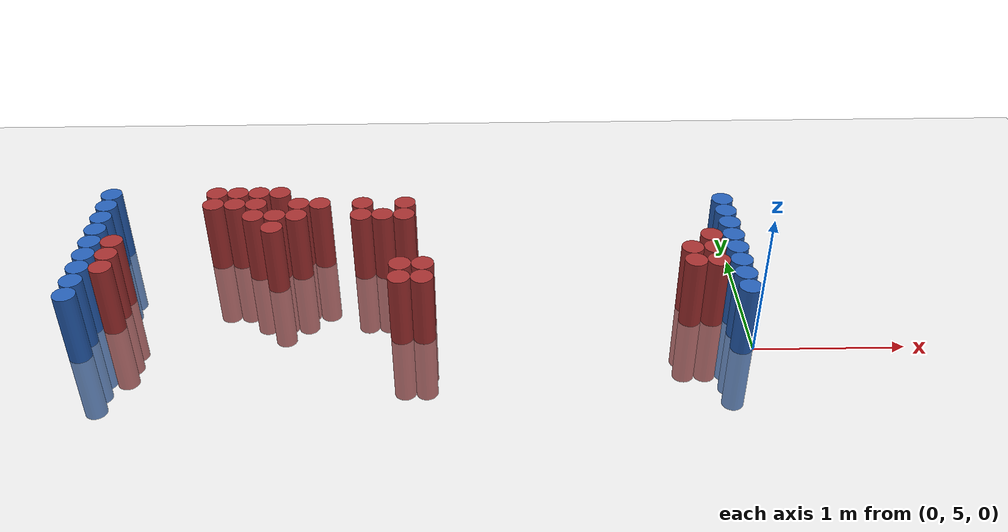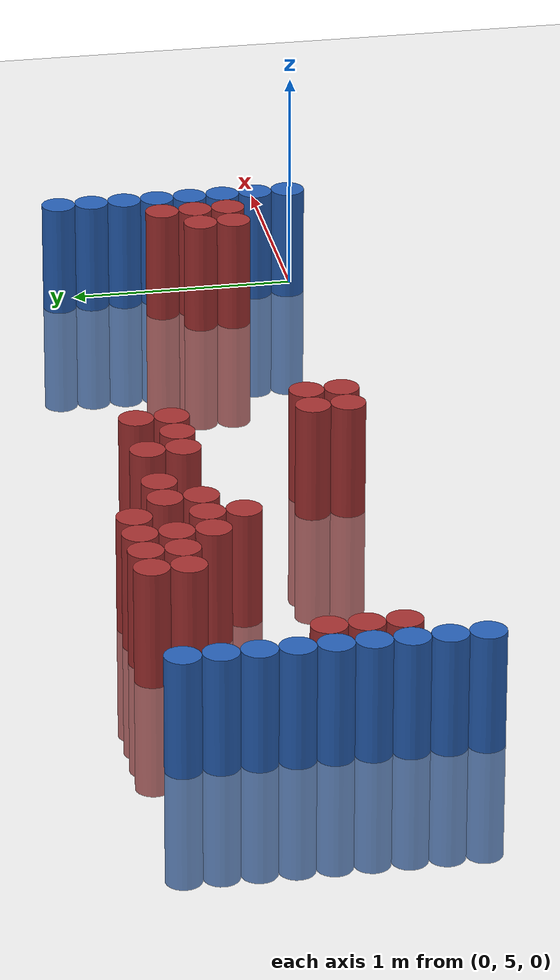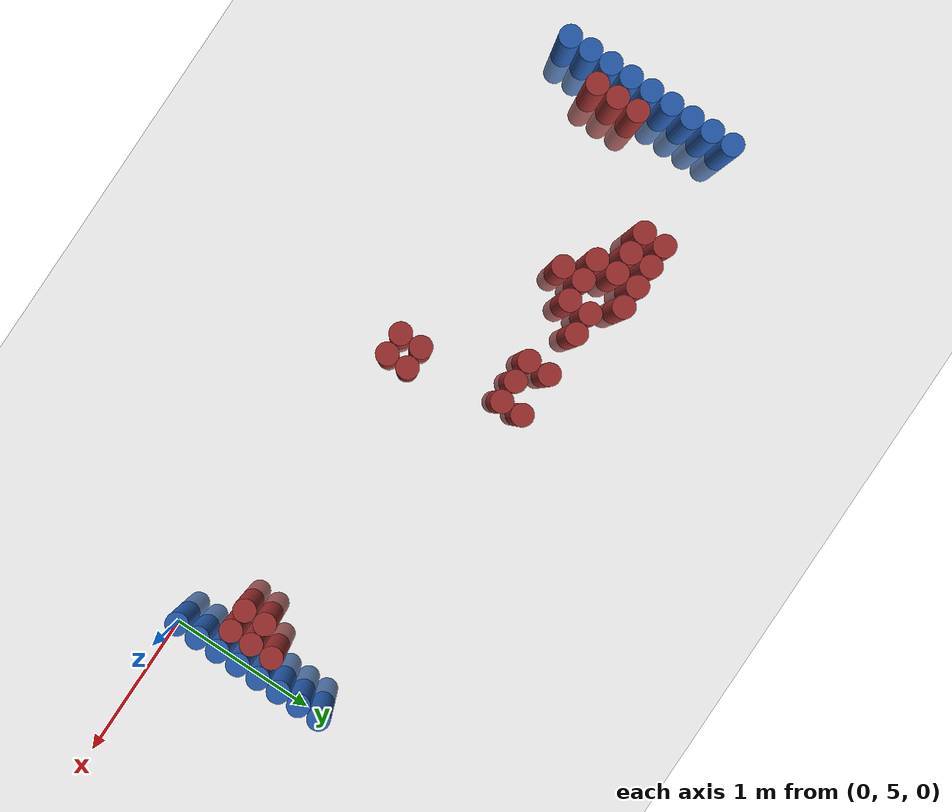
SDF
<sdf version="1.6">
 <world name="default">
  <model name="ground_plane">
   <static>1</static>
   <link name="link">
    <collision name="collision">
     <geometry><plane><normal>0 0 1</normal><size>100 100</size></plane></geometry>
     <surface><friction><ode><mu>100</mu><mu2>50</mu2></ode></friction></surface>
    </collision>
    <visual name="visual">
     <cast_shadows>0</cast_shadows>
     <geometry><plane><normal>0 0 1</normal><size>100 100</size></plane></geometry>
     <material>
      <script><uri>file://media/materials/scripts/gazebo.material</uri><name>Gazebo/Grey</name></script>
     </material>
    </visual>
   </link>
  </model>
  <model name="unit_cylinder_94">
   <static>1</static>
   <pose>-0.075000 5.025000 0.000000 0.000000 0.000000 0.000000</pose>
   <link name="link">
    <inertial>
     <mass>1</mass>
     <inertia><ixx>0.145833</ixx><ixy>0</ixy><ixz>0</ixz><iyy>0.145833</iyy><iyz>0</iyz><izz>0.125</izz></inertia>
    </inertial>
    <collision name="collision">
     <geometry><cylinder><radius>0.075000</radius><length>1</length></cylinder></geometry>
    </collision>
    <visual name="visual">
     <geometry><cylinder><radius>0.075000</radius><length>1</length></cylinder></geometry>
     <material>
      <ambient>0.152000 0.379000 0.720000 1</ambient>
      <diffuse>0.152000 0.379000 0.720000 1</diffuse>
     </material>
     <material>
      <script><name>Gazebo/Grey</name><uri>file://media/materials/scripts/gazebo.material</uri></script>
     </material>
    </visual>
   </link>
  </model>
  <model name="unit_cylinder_95">
   <static>1</static>
   <pose>-4.425000 5.025000 0.000000 0.000000 0.000000 0.000000</pose>
   <link name="link">
    <inertial>
     <mass>1</mass>
     <inertia><ixx>0.145833</ixx><ixy>0</ixy><ixz>0</ixz><iyy>0.145833</iyy><iyz>0</iyz><izz>0.125</izz></inertia>
    </inertial>
    <collision name="collision">
     <geometry><cylinder><radius>0.075000</radius><length>1</length></cylinder></geometry>
    </collision>
    <visual name="visual">
     <geometry><cylinder><radius>0.075000</radius><length>1</length></cylinder></geometry>
     <material>
      <ambient>0.152000 0.379000 0.720000 1</ambient>
      <diffuse>0.152000 0.379000 0.720000 1</diffuse>
     </material>
     <material>
      <script><name>Gazebo/Grey</name><uri>file://media/materials/scripts/gazebo.material</uri></script>
     </material>
    </visual>
   </link>
  </model>
  <model name="unit_cylinder_96">
   <static>1</static>
   <pose>-4.425000 5.175000 0.000000 0.000000 0.000000 0.000000</pose>
   <link name="link">
    <inertial>
     <mass>1</mass>
     <inertia><ixx>0.145833</ixx><ixy>0</ixy><ixz>0</ixz><iyy>0.145833</iyy><iyz>0</iyz><izz>0.125</izz></inertia>
    </inertial>
    <collision name="collision">
     <geometry><cylinder><radius>0.075000</radius><length>1</length></cylinder></geometry>
    </collision>
    <visual name="visual">
     <geometry><cylinder><radius>0.075000</radius><length>1</length></cylinder></geometry>
     <material>
      <ambient>0.152000 0.379000 0.720000 1</ambient>
      <diffuse>0.152000 0.379000 0.720000 1</diffuse>
     </material>
     <material>
      <script><name>Gazebo/Grey</name><uri>file://media/materials/scripts/gazebo.material</uri></script>
     </material>
    </visual>
   </link>
  </model>
  <model name="unit_cylinder_97">
   <static>1</static>
   <pose>-4.425000 5.325000 0.000000 0.000000 0.000000 0.000000</pose>
   <link name="link">
    <inertial>
     <mass>1</mass>
     <inertia><ixx>0.145833</ixx><ixy>0</ixy><ixz>0</ixz><iyy>0.145833</iyy><iyz>0</iyz><izz>0.125</izz></inertia>
    </inertial>
    <collision name="collision">
     <geometry><cylinder><radius>0.075000</radius><length>1</length></cylinder></geometry>
    </collision>
    <visual name="visual">
     <geometry><cylinder><radius>0.075000</radius><length>1</length></cylinder></geometry>
     <material>
      <ambient>0.152000 0.379000 0.720000 1</ambient>
      <diffuse>0.152000 0.379000 0.720000 1</diffuse>
     </material>
     <material>
      <script><name>Gazebo/Grey</name><uri>file://media/materials/scripts/gazebo.material</uri></script>
     </material>
    </visual>
   </link>
  </model>
  <model name="unit_cylinder_98">
   <static>1</static>
   <pose>-4.425000 5.475000 0.000000 0.000000 0.000000 0.000000</pose>
   <link name="link">
    <inertial>
     <mass>1</mass>
     <inertia><ixx>0.145833</ixx><ixy>0</ixy><ixz>0</ixz><iyy>0.145833</iyy><iyz>0</iyz><izz>0.125</izz></inertia>
    </inertial>
    <collision name="collision">
     <geometry><cylinder><radius>0.075000</radius><length>1</length></cylinder></geometry>
    </collision>
    <visual name="visual">
     <geometry><cylinder><radius>0.075000</radius><length>1</length></cylinder></geometry>
     <material>
      <ambient>0.152000 0.379000 0.720000 1</ambient>
      <diffuse>0.152000 0.379000 0.720000 1</diffuse>
     </material>
     <material>
      <script><name>Gazebo/Grey</name><uri>file://media/materials/scripts/gazebo.material</uri></script>
     </material>
    </visual>
   </link>
  </model>
  <model name="unit_cylinder_99">
   <static>1</static>
   <pose>-4.425000 5.625000 0.000000 0.000000 0.000000 0.000000</pose>
   <link name="link">
    <inertial>
     <mass>1</mass>
     <inertia><ixx>0.145833</ixx><ixy>0</ixy><ixz>0</ixz><iyy>0.145833</iyy><iyz>0</iyz><izz>0.125</izz></inertia>
    </inertial>
    <collision name="collision">
     <geometry><cylinder><radius>0.075000</radius><length>1</length></cylinder></geometry>
    </collision>
    <visual name="visual">
     <geometry><cylinder><radius>0.075000</radius><length>1</length></cylinder></geometry>
     <material>
      <ambient>0.152000 0.379000 0.720000 1</ambient>
      <diffuse>0.152000 0.379000 0.720000 1</diffuse>
     </material>
     <material>
      <script><name>Gazebo/Grey</name><uri>file://media/materials/scripts/gazebo.material</uri></script>
     </material>
    </visual>
   </link>
  </model>
  <model name="unit_cylinder_100">
   <static>1</static>
   <pose>-4.425000 5.775000 0.000000 0.000000 0.000000 0.000000</pose>
   <link name="link">
    <inertial>
     <mass>1</mass>
     <inertia><ixx>0.145833</ixx><ixy>0</ixy><ixz>0</ixz><iyy>0.145833</iyy><iyz>0</iyz><izz>0.125</izz></inertia>
    </inertial>
    <collision name="collision">
     <geometry><cylinder><radius>0.075000</radius><length>1</length></cylinder></geometry>
    </collision>
    <visual name="visual">
     <geometry><cylinder><radius>0.075000</radius><length>1</length></cylinder></geometry>
     <material>
      <ambient>0.152000 0.379000 0.720000 1</ambient>
      <diffuse>0.152000 0.379000 0.720000 1</diffuse>
     </material>
     <material>
      <script><name>Gazebo/Grey</name><uri>file://media/materials/scripts/gazebo.material</uri></script>
     </material>
    </visual>
   </link>
  </model>
  <model name="unit_cylinder_101">
   <static>1</static>
   <pose>-4.425000 5.925000 0.000000 0.000000 0.000000 0.000000</pose>
   <link name="link">
    <inertial>
     <mass>1</mass>
     <inertia><ixx>0.145833</ixx><ixy>0</ixy><ixz>0</ixz><iyy>0.145833</iyy><iyz>0</iyz><izz>0.125</izz></inertia>
    </inertial>
    <collision name="collision">
     <geometry><cylinder><radius>0.075000</radius><length>1</length></cylinder></geometry>
    </collision>
    <visual name="visual">
     <geometry><cylinder><radius>0.075000</radius><length>1</length></cylinder></geometry>
     <material>
      <ambient>0.152000 0.379000 0.720000 1</ambient>
      <diffuse>0.152000 0.379000 0.720000 1</diffuse>
     </material>
     <material>
      <script><name>Gazebo/Grey</name><uri>file://media/materials/scripts/gazebo.material</uri></script>
     </material>
    </visual>
   </link>
  </model>
  <model name="unit_cylinder_102">
   <static>1</static>
   <pose>-4.425000 6.075000 0.000000 0.000000 0.000000 0.000000</pose>
   <link name="link">
    <inertial>
     <mass>1</mass>
     <inertia><ixx>0.145833</ixx><ixy>0</ixy><ixz>0</ixz><iyy>0.145833</iyy><iyz>0</iyz><izz>0.125</izz></inertia>
    </inertial>
    <collision name="collision">
     <geometry><cylinder><radius>0.075000</radius><length>1</length></cylinder></geometry>
    </collision>
    <visual name="visual">
     <geometry><cylinder><radius>0.075000</radius><length>1</length></cylinder></geometry>
     <material>
      <ambient>0.152000 0.379000 0.720000 1</ambient>
      <diffuse>0.152000 0.379000 0.720000 1</diffuse>
     </material>
     <material>
      <script><name>Gazebo/Grey</name><uri>file://media/materials/scripts/gazebo.material</uri></script>
     </material>
    </visual>
   </link>
  </model>
  <model name="unit_cylinder_103">
   <static>1</static>
   <pose>-4.425000 6.225000 0.000000 0.000000 0.000000 0.000000</pose>
   <link name="link">
    <inertial>
     <mass>1</mass>
     <inertia><ixx>0.145833</ixx><ixy>0</ixy><ixz>0</ixz><iyy>0.145833</iyy><iyz>0</iyz><izz>0.125</izz></inertia>
    </inertial>
    <collision name="collision">
     <geometry><cylinder><radius>0.075000</radius><length>1</length></cylinder></geometry>
    </collision>
    <visual name="visual">
     <geometry><cylinder><radius>0.075000</radius><length>1</length></cylinder></geometry>
     <material>
      <ambient>0.152000 0.379000 0.720000 1</ambient>
      <diffuse>0.152000 0.379000 0.720000 1</diffuse>
     </material>
     <material>
      <script><name>Gazebo/Grey</name><uri>file://media/materials/scripts/gazebo.material</uri></script>
     </material>
    </visual>
   </link>
  </model>
  <model name="unit_cylinder_126">
   <static>1</static>
   <pose>-4.275000 5.325000 0.000000 0.000000 0.000000 0.000000</pose>
   <link name="link">
    <inertial>
     <mass>1</mass>
     <inertia><ixx>0.145833</ixx><ixy>0</ixy><ixz>0</ixz><iyy>0.145833</iyy><iyz>0</iyz><izz>0.125</izz></inertia>
    </inertial>
    <collision name="collision">
     <geometry><cylinder><radius>0.075000</radius><length>1</length></cylinder></geometry>
    </collision>
    <visual name="visual">
     <geometry><cylinder><radius>0.075000</radius><length>1</length></cylinder></geometry>
     <material>
      <ambient>0.648000 0.192000 0.192000 1</ambient>
      <diffuse>0.648000 0.192000 0.192000 1</diffuse>
     </material>
     <material>
      <script><name>Gazebo/Grey</name><uri>file://media/materials/scripts/gazebo.material</uri></script>
     </material>
    </visual>
   </link>
  </model>
  <model name="unit_cylinder_127">
   <static>1</static>
   <pose>-4.275000 5.475000 0.000000 0.000000 0.000000 0.000000</pose>
   <link name="link">
    <inertial>
     <mass>1</mass>
     <inertia><ixx>0.145833</ixx><ixy>0</ixy><ixz>0</ixz><iyy>0.145833</iyy><iyz>0</iyz><izz>0.125</izz></inertia>
    </inertial>
    <collision name="collision">
     <geometry><cylinder><radius>0.075000</radius><length>1</length></cylinder></geometry>
    </collision>
    <visual name="visual">
     <geometry><cylinder><radius>0.075000</radius><length>1</length></cylinder></geometry>
     <material>
      <ambient>0.648000 0.192000 0.192000 1</ambient>
      <diffuse>0.648000 0.192000 0.192000 1</diffuse>
     </material>
     <material>
      <script><name>Gazebo/Grey</name><uri>file://media/materials/scripts/gazebo.material</uri></script>
     </material>
    </visual>
   </link>
  </model>
  <model name="unit_cylinder_128">
   <static>1</static>
   <pose>-4.275000 5.625000 0.000000 0.000000 0.000000 0.000000</pose>
   <link name="link">
    <inertial>
     <mass>1</mass>
     <inertia><ixx>0.145833</ixx><ixy>0</ixy><ixz>0</ixz><iyy>0.145833</iyy><iyz>0</iyz><izz>0.125</izz></inertia>
    </inertial>
    <collision name="collision">
     <geometry><cylinder><radius>0.075000</radius><length>1</length></cylinder></geometry>
    </collision>
    <visual name="visual">
     <geometry><cylinder><radius>0.075000</radius><length>1</length></cylinder></geometry>
     <material>
      <ambient>0.648000 0.192000 0.192000 1</ambient>
      <diffuse>0.648000 0.192000 0.192000 1</diffuse>
     </material>
     <material>
      <script><name>Gazebo/Grey</name><uri>file://media/materials/scripts/gazebo.material</uri></script>
     </material>
    </visual>
   </link>
  </model>
  <model name="unit_cylinder_155">
   <static>1</static>
   <pose>-3.675000 6.075000 0.000000 0.000000 0.000000 0.000000</pose>
   <link name="link">
    <inertial>
     <mass>1</mass>
     <inertia><ixx>0.145833</ixx><ixy>0</ixy><ixz>0</ixz><iyy>0.145833</iyy><iyz>0</iyz><izz>0.125</izz></inertia>
    </inertial>
    <collision name="collision">
     <geometry><cylinder><radius>0.075000</radius><length>1</length></cylinder></geometry>
    </collision>
    <visual name="visual">
     <geometry><cylinder><radius>0.075000</radius><length>1</length></cylinder></geometry>
     <material>
      <ambient>0.648000 0.192000 0.192000 1</ambient>
      <diffuse>0.648000 0.192000 0.192000 1</diffuse>
     </material>
     <material>
      <script><name>Gazebo/Grey</name><uri>file://media/materials/scripts/gazebo.material</uri></script>
     </material>
    </visual>
   </link>
  </model>
  <model name="unit_cylinder_156">
   <static>1</static>
   <pose>-3.675000 6.225000 0.000000 0.000000 0.000000 0.000000</pose>
   <link name="link">
    <inertial>
     <mass>1</mass>
     <inertia><ixx>0.145833</ixx><ixy>0</ixy><ixz>0</ixz><iyy>0.145833</iyy><iyz>0</iyz><izz>0.125</izz></inertia>
    </inertial>
    <collision name="collision">
     <geometry><cylinder><radius>0.075000</radius><length>1</length></cylinder></geometry>
    </collision>
    <visual name="visual">
     <geometry><cylinder><radius>0.075000</radius><length>1</length></cylinder></geometry>
     <material>
      <ambient>0.648000 0.192000 0.192000 1</ambient>
      <diffuse>0.648000 0.192000 0.192000 1</diffuse>
     </material>
     <material>
      <script><name>Gazebo/Grey</name><uri>file://media/materials/scripts/gazebo.material</uri></script>
     </material>
    </visual>
   </link>
  </model>
  <model name="unit_cylinder_162">
   <static>1</static>
   <pose>-3.525000 6.075000 0.000000 0.000000 0.000000 0.000000</pose>
   <link name="link">
    <inertial>
     <mass>1</mass>
     <inertia><ixx>0.145833</ixx><ixy>0</ixy><ixz>0</ixz><iyy>0.145833</iyy><iyz>0</iyz><izz>0.125</izz></inertia>
    </inertial>
    <collision name="collision">
     <geometry><cylinder><radius>0.075000</radius><length>1</length></cylinder></geometry>
    </collision>
    <visual name="visual">
     <geometry><cylinder><radius>0.075000</radius><length>1</length></cylinder></geometry>
     <material>
      <ambient>0.648000 0.192000 0.192000 1</ambient>
      <diffuse>0.648000 0.192000 0.192000 1</diffuse>
     </material>
     <material>
      <script><name>Gazebo/Grey</name><uri>file://media/materials/scripts/gazebo.material</uri></script>
     </material>
    </visual>
   </link>
  </model>
  <model name="unit_cylinder_163">
   <static>1</static>
   <pose>-3.525000 6.225000 0.000000 0.000000 0.000000 0.000000</pose>
   <link name="link">
    <inertial>
     <mass>1</mass>
     <inertia><ixx>0.145833</ixx><ixy>0</ixy><ixz>0</ixz><iyy>0.145833</iyy><iyz>0</iyz><izz>0.125</izz></inertia>
    </inertial>
    <collision name="collision">
     <geometry><cylinder><radius>0.075000</radius><length>1</length></cylinder></geometry>
    </collision>
    <visual name="visual">
     <geometry><cylinder><radius>0.075000</radius><length>1</length></cylinder></geometry>
     <material>
      <ambient>0.648000 0.192000 0.192000 1</ambient>
      <diffuse>0.648000 0.192000 0.192000 1</diffuse>
     </material>
     <material>
      <script><name>Gazebo/Grey</name><uri>file://media/materials/scripts/gazebo.material</uri></script>
     </material>
    </visual>
   </link>
  </model>
  <model name="unit_cylinder_171">
   <static>1</static>
   <pose>-3.375000 5.925000 0.000000 0.000000 0.000000 0.000000</pose>
   <link name="link">
    <inertial>
     <mass>1</mass>
     <inertia><ixx>0.145833</ixx><ixy>0</ixy><ixz>0</ixz><iyy>0.145833</iyy><iyz>0</iyz><izz>0.125</izz></inertia>
    </inertial>
    <collision name="collision">
     <geometry><cylinder><radius>0.075000</radius><length>1</length></cylinder></geometry>
    </collision>
    <visual name="visual">
     <geometry><cylinder><radius>0.075000</radius><length>1</length></cylinder></geometry>
     <material>
      <ambient>0.648000 0.192000 0.192000 1</ambient>
      <diffuse>0.648000 0.192000 0.192000 1</diffuse>
     </material>
     <material>
      <script><name>Gazebo/Grey</name><uri>file://media/materials/scripts/gazebo.material</uri></script>
     </material>
    </visual>
   </link>
  </model>
  <model name="unit_cylinder_172">
   <static>1</static>
   <pose>-3.375000 6.075000 0.000000 0.000000 0.000000 0.000000</pose>
   <link name="link">
    <inertial>
     <mass>1</mass>
     <inertia><ixx>0.145833</ixx><ixy>0</ixy><ixz>0</ixz><iyy>0.145833</iyy><iyz>0</iyz><izz>0.125</izz></inertia>
    </inertial>
    <collision name="collision">
     <geometry><cylinder><radius>0.075000</radius><length>1</length></cylinder></geometry>
    </collision>
    <visual name="visual">
     <geometry><cylinder><radius>0.075000</radius><length>1</length></cylinder></geometry>
     <material>
      <ambient>0.648000 0.192000 0.192000 1</ambient>
      <diffuse>0.648000 0.192000 0.192000 1</diffuse>
     </material>
     <material>
      <script><name>Gazebo/Grey</name><uri>file://media/materials/scripts/gazebo.material</uri></script>
     </material>
    </visual>
   </link>
  </model>
  <model name="unit_cylinder_173">
   <static>1</static>
   <pose>-3.375000 6.225000 0.000000 0.000000 0.000000 0.000000</pose>
   <link name="link">
    <inertial>
     <mass>1</mass>
     <inertia><ixx>0.145833</ixx><ixy>0</ixy><ixz>0</ixz><iyy>0.145833</iyy><iyz>0</iyz><izz>0.125</izz></inertia>
    </inertial>
    <collision name="collision">
     <geometry><cylinder><radius>0.075000</radius><length>1</length></cylinder></geometry>
    </collision>
    <visual name="visual">
     <geometry><cylinder><radius>0.075000</radius><length>1</length></cylinder></geometry>
     <material>
      <ambient>0.648000 0.192000 0.192000 1</ambient>
      <diffuse>0.648000 0.192000 0.192000 1</diffuse>
     </material>
     <material>
      <script><name>Gazebo/Grey</name><uri>file://media/materials/scripts/gazebo.material</uri></script>
     </material>
    </visual>
   </link>
  </model>
  <model name="unit_cylinder_180">
   <static>1</static>
   <pose>-3.225000 5.775000 0.000000 0.000000 0.000000 0.000000</pose>
   <link name="link">
    <inertial>
     <mass>1</mass>
     <inertia><ixx>0.145833</ixx><ixy>0</ixy><ixz>0</ixz><iyy>0.145833</iyy><iyz>0</iyz><izz>0.125</izz></inertia>
    </inertial>
    <collision name="collision">
     <geometry><cylinder><radius>0.075000</radius><length>1</length></cylinder></geometry>
    </collision>
    <visual name="visual">
     <geometry><cylinder><radius>0.075000</radius><length>1</length></cylinder></geometry>
     <material>
      <ambient>0.648000 0.192000 0.192000 1</ambient>
      <diffuse>0.648000 0.192000 0.192000 1</diffuse>
     </material>
     <material>
      <script><name>Gazebo/Grey</name><uri>file://media/materials/scripts/gazebo.material</uri></script>
     </material>
    </visual>
   </link>
  </model>
  <model name="unit_cylinder_181">
   <static>1</static>
   <pose>-3.225000 5.925000 0.000000 0.000000 0.000000 0.000000</pose>
   <link name="link">
    <inertial>
     <mass>1</mass>
     <inertia><ixx>0.145833</ixx><ixy>0</ixy><ixz>0</ixz><iyy>0.145833</iyy><iyz>0</iyz><izz>0.125</izz></inertia>
    </inertial>
    <collision name="collision">
     <geometry><cylinder><radius>0.075000</radius><length>1</length></cylinder></geometry>
    </collision>
    <visual name="visual">
     <geometry><cylinder><radius>0.075000</radius><length>1</length></cylinder></geometry>
     <material>
      <ambient>0.648000 0.192000 0.192000 1</ambient>
      <diffuse>0.648000 0.192000 0.192000 1</diffuse>
     </material>
     <material>
      <script><name>Gazebo/Grey</name><uri>file://media/materials/scripts/gazebo.material</uri></script>
     </material>
    </visual>
   </link>
  </model>
  <model name="unit_cylinder_182">
   <static>1</static>
   <pose>-3.225000 6.225000 0.000000 0.000000 0.000000 0.000000</pose>
   <link name="link">
    <inertial>
     <mass>1</mass>
     <inertia><ixx>0.145833</ixx><ixy>0</ixy><ixz>0</ixz><iyy>0.145833</iyy><iyz>0</iyz><izz>0.125</izz></inertia>
    </inertial>
    <collision name="collision">
     <geometry><cylinder><radius>0.075000</radius><length>1</length></cylinder></geometry>
    </collision>
    <visual name="visual">
     <geometry><cylinder><radius>0.075000</radius><length>1</length></cylinder></geometry>
     <material>
      <ambient>0.648000 0.192000 0.192000 1</ambient>
      <diffuse>0.648000 0.192000 0.192000 1</diffuse>
     </material>
     <material>
      <script><name>Gazebo/Grey</name><uri>file://media/materials/scripts/gazebo.material</uri></script>
     </material>
    </visual>
   </link>
  </model>
  <model name="unit_cylinder_189">
   <static>1</static>
   <pose>-3.075000 5.925000 0.000000 0.000000 0.000000 0.000000</pose>
   <link name="link">
    <inertial>
     <mass>1</mass>
     <inertia><ixx>0.145833</ixx><ixy>0</ixy><ixz>0</ixz><iyy>0.145833</iyy><iyz>0</iyz><izz>0.125</izz></inertia>
    </inertial>
    <collision name="collision">
     <geometry><cylinder><radius>0.075000</radius><length>1</length></cylinder></geometry>
    </collision>
    <visual name="visual">
     <geometry><cylinder><radius>0.075000</radius><length>1</length></cylinder></geometry>
     <material>
      <ambient>0.648000 0.192000 0.192000 1</ambient>
      <diffuse>0.648000 0.192000 0.192000 1</diffuse>
     </material>
     <material>
      <script><name>Gazebo/Grey</name><uri>file://media/materials/scripts/gazebo.material</uri></script>
     </material>
    </visual>
   </link>
  </model>
  <model name="unit_cylinder_190">
   <static>1</static>
   <pose>-3.075000 6.075000 0.000000 0.000000 0.000000 0.000000</pose>
   <link name="link">
    <inertial>
     <mass>1</mass>
     <inertia><ixx>0.145833</ixx><ixy>0</ixy><ixz>0</ixz><iyy>0.145833</iyy><iyz>0</iyz><izz>0.125</izz></inertia>
    </inertial>
    <collision name="collision">
     <geometry><cylinder><radius>0.075000</radius><length>1</length></cylinder></geometry>
    </collision>
    <visual name="visual">
     <geometry><cylinder><radius>0.075000</radius><length>1</length></cylinder></geometry>
     <material>
      <ambient>0.648000 0.192000 0.192000 1</ambient>
      <diffuse>0.648000 0.192000 0.192000 1</diffuse>
     </material>
     <material>
      <script><name>Gazebo/Grey</name><uri>file://media/materials/scripts/gazebo.material</uri></script>
     </material>
    </visual>
   </link>
  </model>
  <model name="unit_cylinder_197">
   <static>1</static>
   <pose>-2.925000 6.075000 0.000000 0.000000 0.000000 0.000000</pose>
   <link name="link">
    <inertial>
     <mass>1</mass>
     <inertia><ixx>0.145833</ixx><ixy>0</ixy><ixz>0</ixz><iyy>0.145833</iyy><iyz>0</iyz><izz>0.125</izz></inertia>
    </inertial>
    <collision name="collision">
     <geometry><cylinder><radius>0.075000</radius><length>1</length></cylinder></geometry>
    </collision>
    <visual name="visual">
     <geometry><cylinder><radius>0.075000</radius><length>1</length></cylinder></geometry>
     <material>
      <ambient>0.648000 0.192000 0.192000 1</ambient>
      <diffuse>0.648000 0.192000 0.192000 1</diffuse>
     </material>
     <material>
      <script><name>Gazebo/Grey</name><uri>file://media/materials/scripts/gazebo.material</uri></script>
     </material>
    </visual>
   </link>
  </model>
  <model name="unit_cylinder_199">
   <static>1</static>
   <pose>-2.625000 5.925000 0.000000 0.000000 0.000000 0.000000</pose>
   <link name="link">
    <inertial>
     <mass>1</mass>
     <inertia><ixx>0.145833</ixx><ixy>0</ixy><ixz>0</ixz><iyy>0.145833</iyy><iyz>0</iyz><izz>0.125</izz></inertia>
    </inertial>
    <collision name="collision">
     <geometry><cylinder><radius>0.075000</radius><length>1</length></cylinder></geometry>
    </collision>
    <visual name="visual">
     <geometry><cylinder><radius>0.075000</radius><length>1</length></cylinder></geometry>
     <material>
      <ambient>0.648000 0.192000 0.192000 1</ambient>
      <diffuse>0.648000 0.192000 0.192000 1</diffuse>
     </material>
     <material>
      <script><name>Gazebo/Grey</name><uri>file://media/materials/scripts/gazebo.material</uri></script>
     </material>
    </visual>
   </link>
  </model>
  <model name="unit_cylinder_200">
   <static>1</static>
   <pose>-2.625000 6.075000 0.000000 0.000000 0.000000 0.000000</pose>
   <link name="link">
    <inertial>
     <mass>1</mass>
     <inertia><ixx>0.145833</ixx><ixy>0</ixy><ixz>0</ixz><iyy>0.145833</iyy><iyz>0</iyz><izz>0.125</izz></inertia>
    </inertial>
    <collision name="collision">
     <geometry><cylinder><radius>0.075000</radius><length>1</length></cylinder></geometry>
    </collision>
    <visual name="visual">
     <geometry><cylinder><radius>0.075000</radius><length>1</length></cylinder></geometry>
     <material>
      <ambient>0.648000 0.192000 0.192000 1</ambient>
      <diffuse>0.648000 0.192000 0.192000 1</diffuse>
     </material>
     <material>
      <script><name>Gazebo/Grey</name><uri>file://media/materials/scripts/gazebo.material</uri></script>
     </material>
    </visual>
   </link>
  </model>
  <model name="unit_cylinder_202">
   <static>1</static>
   <pose>-2.475000 5.925000 0.000000 0.000000 0.000000 0.000000</pose>
   <link name="link">
    <inertial>
     <mass>1</mass>
     <inertia><ixx>0.145833</ixx><ixy>0</ixy><ixz>0</ixz><iyy>0.145833</iyy><iyz>0</iyz><izz>0.125</izz></inertia>
    </inertial>
    <collision name="collision">
     <geometry><cylinder><radius>0.075000</radius><length>1</length></cylinder></geometry>
    </collision>
    <visual name="visual">
     <geometry><cylinder><radius>0.075000</radius><length>1</length></cylinder></geometry>
     <material>
      <ambient>0.648000 0.192000 0.192000 1</ambient>
      <diffuse>0.648000 0.192000 0.192000 1</diffuse>
     </material>
     <material>
      <script><name>Gazebo/Grey</name><uri>file://media/materials/scripts/gazebo.material</uri></script>
     </material>
    </visual>
   </link>
  </model>
  <model name="unit_cylinder_209">
   <static>1</static>
   <pose>-2.325000 5.175000 0.000000 0.000000 0.000000 0.000000</pose>
   <link name="link">
    <inertial>
     <mass>1</mass>
     <inertia><ixx>0.145833</ixx><ixy>0</ixy><ixz>0</ixz><iyy>0.145833</iyy><iyz>0</iyz><izz>0.125</izz></inertia>
    </inertial>
    <collision name="collision">
     <geometry><cylinder><radius>0.075000</radius><length>1</length></cylinder></geometry>
    </collision>
    <visual name="visual">
     <geometry><cylinder><radius>0.075000</radius><length>1</length></cylinder></geometry>
     <material>
      <ambient>0.648000 0.192000 0.192000 1</ambient>
      <diffuse>0.648000 0.192000 0.192000 1</diffuse>
     </material>
     <material>
      <script><name>Gazebo/Grey</name><uri>file://media/materials/scripts/gazebo.material</uri></script>
     </material>
    </visual>
   </link>
  </model>
  <model name="unit_cylinder_210">
   <static>1</static>
   <pose>-2.325000 5.325000 0.000000 0.000000 0.000000 0.000000</pose>
   <link name="link">
    <inertial>
     <mass>1</mass>
     <inertia><ixx>0.145833</ixx><ixy>0</ixy><ixz>0</ixz><iyy>0.145833</iyy><iyz>0</iyz><izz>0.125</izz></inertia>
    </inertial>
    <collision name="collision">
     <geometry><cylinder><radius>0.075000</radius><length>1</length></cylinder></geometry>
    </collision>
    <visual name="visual">
     <geometry><cylinder><radius>0.075000</radius><length>1</length></cylinder></geometry>
     <material>
      <ambient>0.648000 0.192000 0.192000 1</ambient>
      <diffuse>0.648000 0.192000 0.192000 1</diffuse>
     </material>
     <material>
      <script><name>Gazebo/Grey</name><uri>file://media/materials/scripts/gazebo.material</uri></script>
     </material>
    </visual>
   </link>
  </model>
  <model name="unit_cylinder_211">
   <static>1</static>
   <pose>-2.325000 5.925000 0.000000 0.000000 0.000000 0.000000</pose>
   <link name="link">
    <inertial>
     <mass>1</mass>
     <inertia><ixx>0.145833</ixx><ixy>0</ixy><ixz>0</ixz><iyy>0.145833</iyy><iyz>0</iyz><izz>0.125</izz></inertia>
    </inertial>
    <collision name="collision">
     <geometry><cylinder><radius>0.075000</radius><length>1</length></cylinder></geometry>
    </collision>
    <visual name="visual">
     <geometry><cylinder><radius>0.075000</radius><length>1</length></cylinder></geometry>
     <material>
      <ambient>0.648000 0.192000 0.192000 1</ambient>
      <diffuse>0.648000 0.192000 0.192000 1</diffuse>
     </material>
     <material>
      <script><name>Gazebo/Grey</name><uri>file://media/materials/scripts/gazebo.material</uri></script>
     </material>
    </visual>
   </link>
  </model>
  <model name="unit_cylinder_212">
   <static>1</static>
   <pose>-2.325000 6.075000 0.000000 0.000000 0.000000 0.000000</pose>
   <link name="link">
    <inertial>
     <mass>1</mass>
     <inertia><ixx>0.145833</ixx><ixy>0</ixy><ixz>0</ixz><iyy>0.145833</iyy><iyz>0</iyz><izz>0.125</izz></inertia>
    </inertial>
    <collision name="collision">
     <geometry><cylinder><radius>0.075000</radius><length>1</length></cylinder></geometry>
    </collision>
    <visual name="visual">
     <geometry><cylinder><radius>0.075000</radius><length>1</length></cylinder></geometry>
     <material>
      <ambient>0.648000 0.192000 0.192000 1</ambient>
      <diffuse>0.648000 0.192000 0.192000 1</diffuse>
     </material>
     <material>
      <script><name>Gazebo/Grey</name><uri>file://media/materials/scripts/gazebo.material</uri></script>
     </material>
    </visual>
   </link>
  </model>
  <model name="unit_cylinder_217">
   <static>1</static>
   <pose>-2.175000 5.175000 0.000000 0.000000 0.000000 0.000000</pose>
   <link name="link">
    <inertial>
     <mass>1</mass>
     <inertia><ixx>0.145833</ixx><ixy>0</ixy><ixz>0</ixz><iyy>0.145833</iyy><iyz>0</iyz><izz>0.125</izz></inertia>
    </inertial>
    <collision name="collision">
     <geometry><cylinder><radius>0.075000</radius><length>1</length></cylinder></geometry>
    </collision>
    <visual name="visual">
     <geometry><cylinder><radius>0.075000</radius><length>1</length></cylinder></geometry>
     <material>
      <ambient>0.648000 0.192000 0.192000 1</ambient>
      <diffuse>0.648000 0.192000 0.192000 1</diffuse>
     </material>
     <material>
      <script><name>Gazebo/Grey</name><uri>file://media/materials/scripts/gazebo.material</uri></script>
     </material>
    </visual>
   </link>
  </model>
  <model name="unit_cylinder_218">
   <static>1</static>
   <pose>-2.175000 5.325000 0.000000 0.000000 0.000000 0.000000</pose>
   <link name="link">
    <inertial>
     <mass>1</mass>
     <inertia><ixx>0.145833</ixx><ixy>0</ixy><ixz>0</ixz><iyy>0.145833</iyy><iyz>0</iyz><izz>0.125</izz></inertia>
    </inertial>
    <collision name="collision">
     <geometry><cylinder><radius>0.075000</radius><length>1</length></cylinder></geometry>
    </collision>
    <visual name="visual">
     <geometry><cylinder><radius>0.075000</radius><length>1</length></cylinder></geometry>
     <material>
      <ambient>0.648000 0.192000 0.192000 1</ambient>
      <diffuse>0.648000 0.192000 0.192000 1</diffuse>
     </material>
     <material>
      <script><name>Gazebo/Grey</name><uri>file://media/materials/scripts/gazebo.material</uri></script>
     </material>
    </visual>
   </link>
  </model>
  <model name="unit_cylinder_276">
   <static>1</static>
   <pose>-0.375000 5.325000 0.000000 0.000000 0.000000 0.000000</pose>
   <link name="link">
    <inertial>
     <mass>1</mass>
     <inertia><ixx>0.145833</ixx><ixy>0</ixy><ixz>0</ixz><iyy>0.145833</iyy><iyz>0</iyz><izz>0.125</izz></inertia>
    </inertial>
    <collision name="collision">
     <geometry><cylinder><radius>0.075000</radius><length>1</length></cylinder></geometry>
    </collision>
    <visual name="visual">
     <geometry><cylinder><radius>0.075000</radius><length>1</length></cylinder></geometry>
     <material>
      <ambient>0.648000 0.192000 0.192000 1</ambient>
      <diffuse>0.648000 0.192000 0.192000 1</diffuse>
     </material>
     <material>
      <script><name>Gazebo/Grey</name><uri>file://media/materials/scripts/gazebo.material</uri></script>
     </material>
    </visual>
   </link>
  </model>
  <model name="unit_cylinder_277">
   <static>1</static>
   <pose>-0.375000 5.475000 0.000000 0.000000 0.000000 0.000000</pose>
   <link name="link">
    <inertial>
     <mass>1</mass>
     <inertia><ixx>0.145833</ixx><ixy>0</ixy><ixz>0</ixz><iyy>0.145833</iyy><iyz>0</iyz><izz>0.125</izz></inertia>
    </inertial>
    <collision name="collision">
     <geometry><cylinder><radius>0.075000</radius><length>1</length></cylinder></geometry>
    </collision>
    <visual name="visual">
     <geometry><cylinder><radius>0.075000</radius><length>1</length></cylinder></geometry>
     <material>
      <ambient>0.648000 0.192000 0.192000 1</ambient>
      <diffuse>0.648000 0.192000 0.192000 1</diffuse>
     </material>
     <material>
      <script><name>Gazebo/Grey</name><uri>file://media/materials/scripts/gazebo.material</uri></script>
     </material>
    </visual>
   </link>
  </model>
  <model name="unit_cylinder_284">
   <static>1</static>
   <pose>-0.225000 5.325000 0.000000 0.000000 0.000000 0.000000</pose>
   <link name="link">
    <inertial>
     <mass>1</mass>
     <inertia><ixx>0.145833</ixx><ixy>0</ixy><ixz>0</ixz><iyy>0.145833</iyy><iyz>0</iyz><izz>0.125</izz></inertia>
    </inertial>
    <collision name="collision">
     <geometry><cylinder><radius>0.075000</radius><length>1</length></cylinder></geometry>
    </collision>
    <visual name="visual">
     <geometry><cylinder><radius>0.075000</radius><length>1</length></cylinder></geometry>
     <material>
      <ambient>0.648000 0.192000 0.192000 1</ambient>
      <diffuse>0.648000 0.192000 0.192000 1</diffuse>
     </material>
     <material>
      <script><name>Gazebo/Grey</name><uri>file://media/materials/scripts/gazebo.material</uri></script>
     </material>
    </visual>
   </link>
  </model>
  <model name="unit_cylinder_285">
   <static>1</static>
   <pose>-0.225000 5.475000 0.000000 0.000000 0.000000 0.000000</pose>
   <link name="link">
    <inertial>
     <mass>1</mass>
     <inertia><ixx>0.145833</ixx><ixy>0</ixy><ixz>0</ixz><iyy>0.145833</iyy><iyz>0</iyz><izz>0.125</izz></inertia>
    </inertial>
    <collision name="collision">
     <geometry><cylinder><radius>0.075000</radius><length>1</length></cylinder></geometry>
    </collision>
    <visual name="visual">
     <geometry><cylinder><radius>0.075000</radius><length>1</length></cylinder></geometry>
     <material>
      <ambient>0.648000 0.192000 0.192000 1</ambient>
      <diffuse>0.648000 0.192000 0.192000 1</diffuse>
     </material>
     <material>
      <script><name>Gazebo/Grey</name><uri>file://media/materials/scripts/gazebo.material</uri></script>
     </material>
    </visual>
   </link>
  </model>
  <model name="unit_cylinder_286">
   <static>1</static>
   <pose>-0.225000 5.625000 0.000000 0.000000 0.000000 0.000000</pose>
   <link name="link">
    <inertial>
     <mass>1</mass>
     <inertia><ixx>0.145833</ixx><ixy>0</ixy><ixz>0</ixz><iyy>0.145833</iyy><iyz>0</iyz><izz>0.125</izz></inertia>
    </inertial>
    <collision name="collision">
     <geometry><cylinder><radius>0.075000</radius><length>1</length></cylinder></geometry>
    </collision>
    <visual name="visual">
     <geometry><cylinder><radius>0.075000</radius><length>1</length></cylinder></geometry>
     <material>
      <ambient>0.648000 0.192000 0.192000 1</ambient>
      <diffuse>0.648000 0.192000 0.192000 1</diffuse>
     </material>
     <material>
      <script><name>Gazebo/Grey</name><uri>file://media/materials/scripts/gazebo.material</uri></script>
     </material>
    </visual>
   </link>
  </model>
  <model name="unit_cylinder_300">
   <static>1</static>
   <pose>-0.075000 5.175000 0.000000 0.000000 0.000000 0.000000</pose>
   <link name="link">
    <inertial>
     <mass>1</mass>
     <inertia><ixx>0.145833</ixx><ixy>0</ixy><ixz>0</ixz><iyy>0.145833</iyy><iyz>0</iyz><izz>0.125</izz></inertia>
    </inertial>
    <collision name="collision">
     <geometry><cylinder><radius>0.075000</radius><length>1</length></cylinder></geometry>
    </collision>
    <visual name="visual">
     <geometry><cylinder><radius>0.075000</radius><length>1</length></cylinder></geometry>
     <material>
      <ambient>0.152000 0.379000 0.720000 1</ambient>
      <diffuse>0.152000 0.379000 0.720000 1</diffuse>
     </material>
     <material>
      <script><name>Gazebo/Grey</name><uri>file://media/materials/scripts/gazebo.material</uri></script>
     </material>
    </visual>
   </link>
  </model>
  <model name="unit_cylinder_301">
   <static>1</static>
   <pose>-0.075000 5.325000 0.000000 0.000000 0.000000 0.000000</pose>
   <link name="link">
    <inertial>
     <mass>1</mass>
     <inertia><ixx>0.145833</ixx><ixy>0</ixy><ixz>0</ixz><iyy>0.145833</iyy><iyz>0</iyz><izz>0.125</izz></inertia>
    </inertial>
    <collision name="collision">
     <geometry><cylinder><radius>0.075000</radius><length>1</length></cylinder></geometry>
    </collision>
    <visual name="visual">
     <geometry><cylinder><radius>0.075000</radius><length>1</length></cylinder></geometry>
     <material>
      <ambient>0.152000 0.379000 0.720000 1</ambient>
      <diffuse>0.152000 0.379000 0.720000 1</diffuse>
     </material>
     <material>
      <script><name>Gazebo/Grey</name><uri>file://media/materials/scripts/gazebo.material</uri></script>
     </material>
    </visual>
   </link>
  </model>
  <model name="unit_cylinder_302">
   <static>1</static>
   <pose>-0.075000 5.475000 0.000000 0.000000 0.000000 0.000000</pose>
   <link name="link">
    <inertial>
     <mass>1</mass>
     <inertia><ixx>0.145833</ixx><ixy>0</ixy><ixz>0</ixz><iyy>0.145833</iyy><iyz>0</iyz><izz>0.125</izz></inertia>
    </inertial>
    <collision name="collision">
     <geometry><cylinder><radius>0.075000</radius><length>1</length></cylinder></geometry>
    </collision>
    <visual name="visual">
     <geometry><cylinder><radius>0.075000</radius><length>1</length></cylinder></geometry>
     <material>
      <ambient>0.152000 0.379000 0.720000 1</ambient>
      <diffuse>0.152000 0.379000 0.720000 1</diffuse>
     </material>
     <material>
      <script><name>Gazebo/Grey</name><uri>file://media/materials/scripts/gazebo.material</uri></script>
     </material>
    </visual>
   </link>
  </model>
  <model name="unit_cylinder_303">
   <static>1</static>
   <pose>-0.075000 5.625000 0.000000 0.000000 0.000000 0.000000</pose>
   <link name="link">
    <inertial>
     <mass>1</mass>
     <inertia><ixx>0.145833</ixx><ixy>0</ixy><ixz>0</ixz><iyy>0.145833</iyy><iyz>0</iyz><izz>0.125</izz></inertia>
    </inertial>
    <collision name="collision">
     <geometry><cylinder><radius>0.075000</radius><length>1</length></cylinder></geometry>
    </collision>
    <visual name="visual">
     <geometry><cylinder><radius>0.075000</radius><length>1</length></cylinder></geometry>
     <material>
      <ambient>0.152000 0.379000 0.720000 1</ambient>
      <diffuse>0.152000 0.379000 0.720000 1</diffuse>
     </material>
     <material>
      <script><name>Gazebo/Grey</name><uri>file://media/materials/scripts/gazebo.material</uri></script>
     </material>
    </visual>
   </link>
  </model>
  <model name="unit_cylinder_304">
   <static>1</static>
   <pose>-0.075000 5.775000 0.000000 0.000000 0.000000 0.000000</pose>
   <link name="link">
    <inertial>
     <mass>1</mass>
     <inertia><ixx>0.145833</ixx><ixy>0</ixy><ixz>0</ixz><iyy>0.145833</iyy><iyz>0</iyz><izz>0.125</izz></inertia>
    </inertial>
    <collision name="collision">
     <geometry><cylinder><radius>0.075000</radius><length>1</length></cylinder></geometry>
    </collision>
    <visual name="visual">
     <geometry><cylinder><radius>0.075000</radius><length>1</length></cylinder></geometry>
     <material>
      <ambient>0.152000 0.379000 0.720000 1</ambient>
      <diffuse>0.152000 0.379000 0.720000 1</diffuse>
     </material>
     <material>
      <script><name>Gazebo/Grey</name><uri>file://media/materials/scripts/gazebo.material</uri></script>
     </material>
    </visual>
   </link>
  </model>
  <model name="unit_cylinder_305">
   <static>1</static>
   <pose>-0.075000 5.925000 0.000000 0.000000 0.000000 0.000000</pose>
   <link name="link">
    <inertial>
     <mass>1</mass>
     <inertia><ixx>0.145833</ixx><ixy>0</ixy><ixz>0</ixz><iyy>0.145833</iyy><iyz>0</iyz><izz>0.125</izz></inertia>
    </inertial>
    <collision name="collision">
     <geometry><cylinder><radius>0.075000</radius><length>1</length></cylinder></geometry>
    </collision>
    <visual name="visual">
     <geometry><cylinder><radius>0.075000</radius><length>1</length></cylinder></geometry>
     <material>
      <ambient>0.152000 0.379000 0.720000 1</ambient>
      <diffuse>0.152000 0.379000 0.720000 1</diffuse>
     </material>
     <material>
      <script><name>Gazebo/Grey</name><uri>file://media/materials/scripts/gazebo.material</uri></script>
     </material>
    </visual>
   </link>
  </model>
  <model name="unit_cylinder_306">
   <static>1</static>
   <pose>-0.075000 6.075000 0.000000 0.000000 0.000000 0.000000</pose>
   <link name="link">
    <inertial>
     <mass>1</mass>
     <inertia><ixx>0.145833</ixx><ixy>0</ixy><ixz>0</ixz><iyy>0.145833</iyy><iyz>0</iyz><izz>0.125</izz></inertia>
    </inertial>
    <collision name="collision">
     <geometry><cylinder><radius>0.075000</radius><length>1</length></cylinder></geometry>
    </collision>
    <visual name="visual">
     <geometry><cylinder><radius>0.075000</radius><length>1</length></cylinder></geometry>
     <material>
      <ambient>0.152000 0.379000 0.720000 1</ambient>
      <diffuse>0.152000 0.379000 0.720000 1</diffuse>
     </material>
     <material>
      <script><name>Gazebo/Grey</name><uri>file://media/materials/scripts/gazebo.material</uri></script>
     </material>
    </visual>
   </link>
  </model>
 </world>
</sdf>
